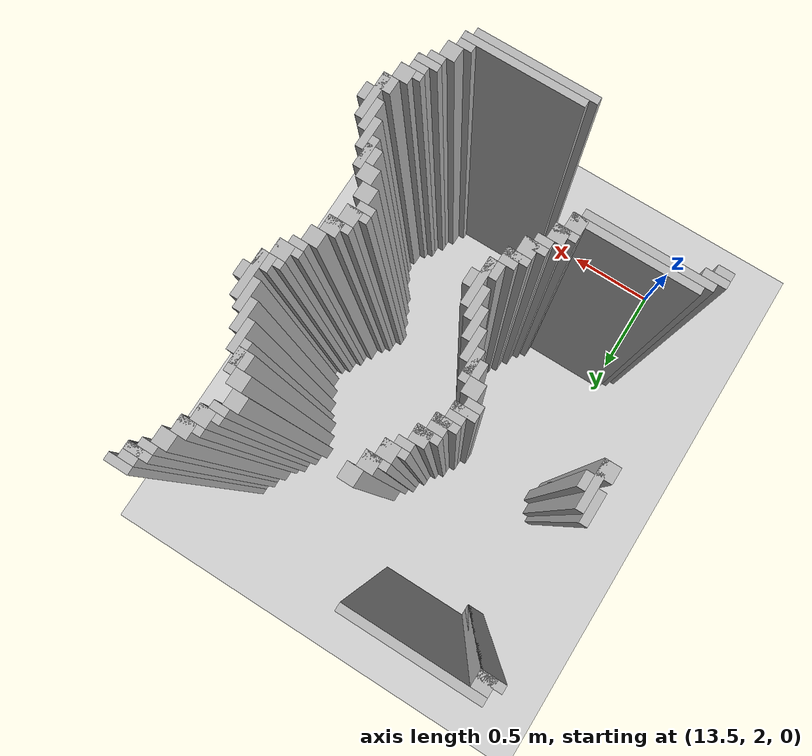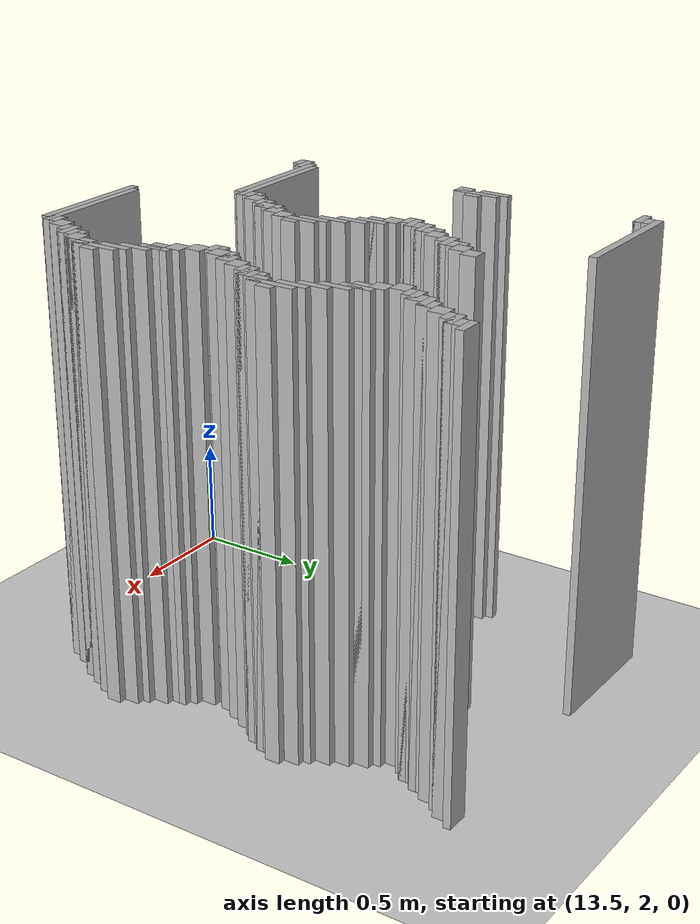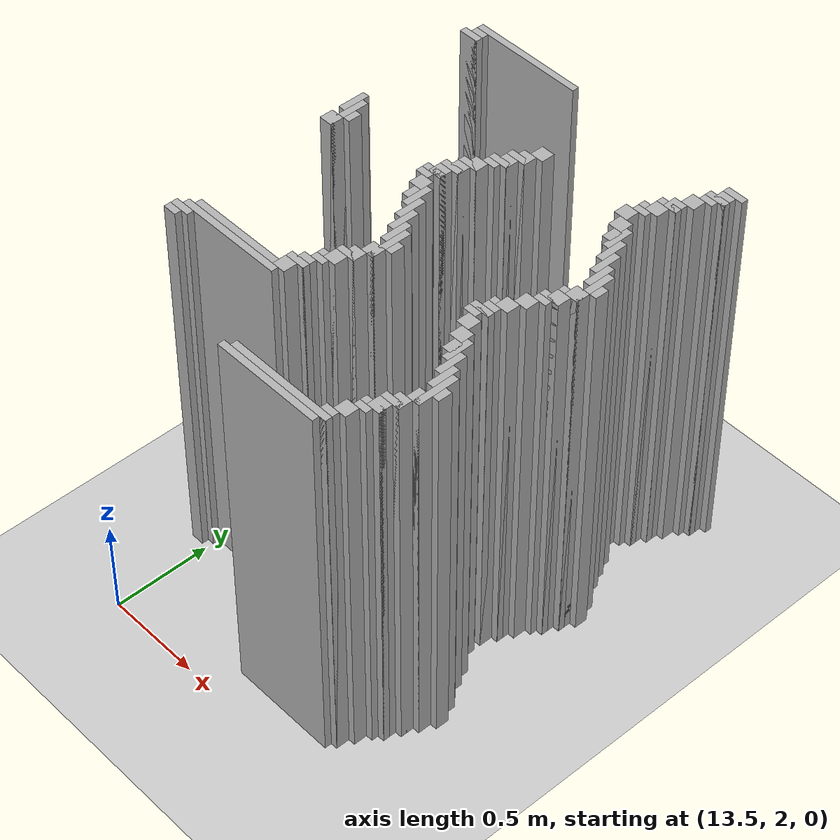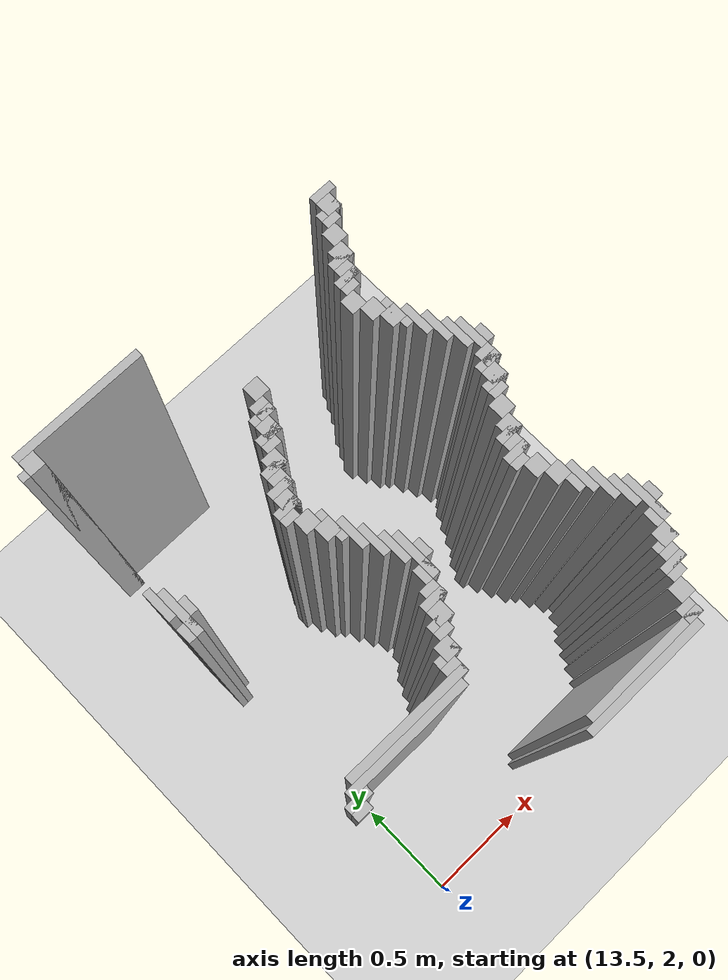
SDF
<sdf version="1.6">
 <world name="slam_world">
  <model name="ground_plane">
   <static>true</static>
   <link name="link">
    <collision name="collision">
     <geometry><plane><normal>0 0 1</normal><size>100 100</size></plane></geometry>
    </collision>
    <visual name="visual">
     <geometry><plane><normal>0 0 1</normal><size>100 100</size></plane></geometry>
     <material>
      <ambient>0.8 0.8 0.8 1</ambient>
      <diffuse>0.8 0.8 0.8 1</diffuse>
      <specular>0.8 0.8 0.8 1</specular>
     </material>
    </visual>
   </link>
  </model>
  <model name="wall_4310">
   <static>true</static>
   <pose>13.694895591647331 4.263341067285383 1.0 0 0 0</pose>
   <link name="link">
    <collision name="collision">
     <geometry><box><size>0.5916473317865429 0.03480278422273782 2.0</size></box></geometry>
    </collision>
    <visual name="visual">
     <geometry><box><size>0.5916473317865429 0.03480278422273782 2.0</size></box></geometry>
     <material><ambient>0.5 0.5 0.5 1</ambient><diffuse>0.7 0.7 0.7 1</diffuse></material>
    </visual>
   </link>
  </model>
  <model name="wall_4311">
   <static>true</static>
   <pose>14.912993039443155 4.263341067285383 1.0 0 0 0</pose>
   <link name="link">
    <collision name="collision">
     <geometry><box><size>0.10440835266821345 0.03480278422273782 2.0</size></box></geometry>
    </collision>
    <visual name="visual">
     <geometry><box><size>0.10440835266821345 0.03480278422273782 2.0</size></box></geometry>
     <material><ambient>0.5 0.5 0.5 1</ambient><diffuse>0.7 0.7 0.7 1</diffuse></material>
    </visual>
   </link>
  </model>
  <model name="wall_4325">
   <static>true</static>
   <pose>13.433874709976797 4.211136890951276 1.0 0 0 0</pose>
   <link name="link">
    <collision name="collision">
     <geometry><box><size>0.06960556844547564 0.06960556844547564 2.0</size></box></geometry>
    </collision>
    <visual name="visual">
     <geometry><box><size>0.06960556844547564 0.06960556844547564 2.0</size></box></geometry>
     <material><ambient>0.5 0.5 0.5 1</ambient><diffuse>0.7 0.7 0.7 1</diffuse></material>
    </visual>
   </link>
  </model>
  <model name="wall_4326">
   <static>true</static>
   <pose>14.895591647331786 4.211136890951276 1.0 0 0 0</pose>
   <link name="link">
    <collision name="collision">
     <geometry><box><size>0.06960556844547564 0.06960556844547564 2.0</size></box></geometry>
    </collision>
    <visual name="visual">
     <geometry><box><size>0.06960556844547564 0.06960556844547564 2.0</size></box></geometry>
     <material><ambient>0.5 0.5 0.5 1</ambient><diffuse>0.7 0.7 0.7 1</diffuse></material>
    </visual>
   </link>
  </model>
  <model name="wall_4340">
   <static>true</static>
   <pose>13.416473317865428 4.193735498839907 1.0 0 0 0</pose>
   <link name="link">
    <collision name="collision">
     <geometry><box><size>0.10440835266821345 0.03480278422273782 2.0</size></box></geometry>
    </collision>
    <visual name="visual">
     <geometry><box><size>0.10440835266821345 0.03480278422273782 2.0</size></box></geometry>
     <material><ambient>0.5 0.5 0.5 1</ambient><diffuse>0.7 0.7 0.7 1</diffuse></material>
    </visual>
   </link>
  </model>
  <model name="wall_4341">
   <static>true</static>
   <pose>14.878190255220417 4.193735498839907 1.0 0 0 0</pose>
   <link name="link">
    <collision name="collision">
     <geometry><box><size>0.10440835266821345 0.03480278422273782 2.0</size></box></geometry>
    </collision>
    <visual name="visual">
     <geometry><box><size>0.10440835266821345 0.03480278422273782 2.0</size></box></geometry>
     <material><ambient>0.5 0.5 0.5 1</ambient><diffuse>0.7 0.7 0.7 1</diffuse></material>
    </visual>
   </link>
  </model>
  <model name="wall_4350">
   <static>true</static>
   <pose>14.860788863109049 4.158932714617169 1.0 0 0 0</pose>
   <link name="link">
    <collision name="collision">
     <geometry><box><size>0.06960556844547564 0.03480278422273782 2.0</size></box></geometry>
    </collision>
    <visual name="visual">
     <geometry><box><size>0.06960556844547564 0.03480278422273782 2.0</size></box></geometry>
     <material><ambient>0.5 0.5 0.5 1</ambient><diffuse>0.7 0.7 0.7 1</diffuse></material>
    </visual>
   </link>
  </model>
  <model name="wall_4365">
   <static>true</static>
   <pose>14.825986078886311 4.106728538283062 1.0 0 0 0</pose>
   <link name="link">
    <collision name="collision">
     <geometry><box><size>0.06960556844547564 0.06960556844547564 2.0</size></box></geometry>
    </collision>
    <visual name="visual">
     <geometry><box><size>0.06960556844547564 0.06960556844547564 2.0</size></box></geometry>
     <material><ambient>0.5 0.5 0.5 1</ambient><diffuse>0.7 0.7 0.7 1</diffuse></material>
    </visual>
   </link>
  </model>
  <model name="wall_4380">
   <static>true</static>
   <pose>14.791183294663572 4.037122969837587 1.0 0 0 0</pose>
   <link name="link">
    <collision name="collision">
     <geometry><box><size>0.06960556844547564 0.06960556844547564 2.0</size></box></geometry>
    </collision>
    <visual name="visual">
     <geometry><box><size>0.06960556844547564 0.06960556844547564 2.0</size></box></geometry>
     <material><ambient>0.5 0.5 0.5 1</ambient><diffuse>0.7 0.7 0.7 1</diffuse></material>
    </visual>
   </link>
  </model>
  <model name="wall_4395">
   <static>true</static>
   <pose>14.773781902552203 4.019721577726218 1.0 0 0 0</pose>
   <link name="link">
    <collision name="collision">
     <geometry><box><size>0.10440835266821345 0.03480278422273782 2.0</size></box></geometry>
    </collision>
    <visual name="visual">
     <geometry><box><size>0.10440835266821345 0.03480278422273782 2.0</size></box></geometry>
     <material><ambient>0.5 0.5 0.5 1</ambient><diffuse>0.7 0.7 0.7 1</diffuse></material>
    </visual>
   </link>
  </model>
  <model name="wall_4403">
   <static>true</static>
   <pose>14.756380510440835 3.967517401392111 1.0 0 0 0</pose>
   <link name="link">
    <collision name="collision">
     <geometry><box><size>0.06960556844547564 0.06960556844547564 2.0</size></box></geometry>
    </collision>
    <visual name="visual">
     <geometry><box><size>0.06960556844547564 0.06960556844547564 2.0</size></box></geometry>
     <material><ambient>0.5 0.5 0.5 1</ambient><diffuse>0.7 0.7 0.7 1</diffuse></material>
    </visual>
   </link>
  </model>
  <model name="wall_4418">
   <static>true</static>
   <pose>14.738979118329466 3.9501160092807424 1.0 0 0 0</pose>
   <link name="link">
    <collision name="collision">
     <geometry><box><size>0.10440835266821345 0.03480278422273782 2.0</size></box></geometry>
    </collision>
    <visual name="visual">
     <geometry><box><size>0.10440835266821345 0.03480278422273782 2.0</size></box></geometry>
     <material><ambient>0.5 0.5 0.5 1</ambient><diffuse>0.7 0.7 0.7 1</diffuse></material>
    </visual>
   </link>
  </model>
  <model name="wall_4426">
   <static>true</static>
   <pose>14.721577726218097 3.9153132250580045 1.0 0 0 0</pose>
   <link name="link">
    <collision name="collision">
     <geometry><box><size>0.06960556844547564 0.03480278422273782 2.0</size></box></geometry>
    </collision>
    <visual name="visual">
     <geometry><box><size>0.06960556844547564 0.03480278422273782 2.0</size></box></geometry>
     <material><ambient>0.5 0.5 0.5 1</ambient><diffuse>0.7 0.7 0.7 1</diffuse></material>
    </visual>
   </link>
  </model>
  <model name="wall_4441">
   <static>true</static>
   <pose>14.199535962877029 3.863109048723898 1.0 0 0 0</pose>
   <link name="link">
    <collision name="collision">
     <geometry><box><size>0.06960556844547564 0.06960556844547564 2.0</size></box></geometry>
    </collision>
    <visual name="visual">
     <geometry><box><size>0.06960556844547564 0.06960556844547564 2.0</size></box></geometry>
     <material><ambient>0.5 0.5 0.5 1</ambient><diffuse>0.7 0.7 0.7 1</diffuse></material>
    </visual>
   </link>
  </model>
  <model name="wall_4442">
   <static>true</static>
   <pose>14.68677494199536 3.863109048723898 1.0 0 0 0</pose>
   <link name="link">
    <collision name="collision">
     <geometry><box><size>0.06960556844547564 0.06960556844547564 2.0</size></box></geometry>
    </collision>
    <visual name="visual">
     <geometry><box><size>0.06960556844547564 0.06960556844547564 2.0</size></box></geometry>
     <material><ambient>0.5 0.5 0.5 1</ambient><diffuse>0.7 0.7 0.7 1</diffuse></material>
    </visual>
   </link>
  </model>
  <model name="wall_4458">
   <static>true</static>
   <pose>14.164733178654291 3.793503480278422 1.0 0 0 0</pose>
   <link name="link">
    <collision name="collision">
     <geometry><box><size>0.06960556844547564 0.06960556844547564 2.0</size></box></geometry>
    </collision>
    <visual name="visual">
     <geometry><box><size>0.06960556844547564 0.06960556844547564 2.0</size></box></geometry>
     <material><ambient>0.5 0.5 0.5 1</ambient><diffuse>0.7 0.7 0.7 1</diffuse></material>
    </visual>
   </link>
  </model>
  <model name="wall_4459">
   <static>true</static>
   <pose>14.721577726218097 3.793503480278422 1.0 0 0 0</pose>
   <link name="link">
    <collision name="collision">
     <geometry><box><size>0.06960556844547564 0.06960556844547564 2.0</size></box></geometry>
    </collision>
    <visual name="visual">
     <geometry><box><size>0.06960556844547564 0.06960556844547564 2.0</size></box></geometry>
     <material><ambient>0.5 0.5 0.5 1</ambient><diffuse>0.7 0.7 0.7 1</diffuse></material>
    </visual>
   </link>
  </model>
  <model name="wall_4475">
   <static>true</static>
   <pose>14.147331786542923 3.776102088167053 1.0 0 0 0</pose>
   <link name="link">
    <collision name="collision">
     <geometry><box><size>0.10440835266821345 0.03480278422273782 2.0</size></box></geometry>
    </collision>
    <visual name="visual">
     <geometry><box><size>0.10440835266821345 0.03480278422273782 2.0</size></box></geometry>
     <material><ambient>0.5 0.5 0.5 1</ambient><diffuse>0.7 0.7 0.7 1</diffuse></material>
    </visual>
   </link>
  </model>
  <model name="wall_4476">
   <static>true</static>
   <pose>14.773781902552203 3.7238979118329465 1.0 0 0 0</pose>
   <link name="link">
    <collision name="collision">
     <geometry><box><size>0.03480278422273782 0.13921113689095127 2.0</size></box></geometry>
    </collision>
    <visual name="visual">
     <geometry><box><size>0.03480278422273782 0.13921113689095127 2.0</size></box></geometry>
     <material><ambient>0.5 0.5 0.5 1</ambient><diffuse>0.7 0.7 0.7 1</diffuse></material>
    </visual>
   </link>
  </model>
  <model name="wall_4492">
   <static>true</static>
   <pose>14.129930394431554 3.7238979118329465 1.0 0 0 0</pose>
   <link name="link">
    <collision name="collision">
     <geometry><box><size>0.06960556844547564 0.06960556844547564 2.0</size></box></geometry>
    </collision>
    <visual name="visual">
     <geometry><box><size>0.06960556844547564 0.06960556844547564 2.0</size></box></geometry>
     <material><ambient>0.5 0.5 0.5 1</ambient><diffuse>0.7 0.7 0.7 1</diffuse></material>
    </visual>
   </link>
  </model>
  <model name="wall_4493">
   <static>true</static>
   <pose>14.756380510440835 3.7238979118329465 1.0 0 0 0</pose>
   <link name="link">
    <collision name="collision">
     <geometry><box><size>0.06960556844547564 0.06960556844547564 2.0</size></box></geometry>
    </collision>
    <visual name="visual">
     <geometry><box><size>0.06960556844547564 0.06960556844547564 2.0</size></box></geometry>
     <material><ambient>0.5 0.5 0.5 1</ambient><diffuse>0.7 0.7 0.7 1</diffuse></material>
    </visual>
   </link>
  </model>
  <model name="wall_4509">
   <static>true</static>
   <pose>14.112529002320185 3.706496519721578 1.0 0 0 0</pose>
   <link name="link">
    <collision name="collision">
     <geometry><box><size>0.10440835266821345 0.03480278422273782 2.0</size></box></geometry>
    </collision>
    <visual name="visual">
     <geometry><box><size>0.10440835266821345 0.03480278422273782 2.0</size></box></geometry>
     <material><ambient>0.5 0.5 0.5 1</ambient><diffuse>0.7 0.7 0.7 1</diffuse></material>
    </visual>
   </link>
  </model>
  <model name="wall_4510">
   <static>true</static>
   <pose>14.80858468677494 3.6542923433874708 1.0 0 0 0</pose>
   <link name="link">
    <collision name="collision">
     <geometry><box><size>0.03480278422273782 0.13921113689095127 2.0</size></box></geometry>
    </collision>
    <visual name="visual">
     <geometry><box><size>0.03480278422273782 0.13921113689095127 2.0</size></box></geometry>
     <material><ambient>0.5 0.5 0.5 1</ambient><diffuse>0.7 0.7 0.7 1</diffuse></material>
    </visual>
   </link>
  </model>
  <model name="wall_4517">
   <static>true</static>
   <pose>14.095127610208817 3.67169373549884 1.0 0 0 0</pose>
   <link name="link">
    <collision name="collision">
     <geometry><box><size>0.06960556844547564 0.03480278422273782 2.0</size></box></geometry>
    </collision>
    <visual name="visual">
     <geometry><box><size>0.06960556844547564 0.03480278422273782 2.0</size></box></geometry>
     <material><ambient>0.5 0.5 0.5 1</ambient><diffuse>0.7 0.7 0.7 1</diffuse></material>
    </visual>
   </link>
  </model>
  <model name="wall_4533">
   <static>true</static>
   <pose>14.06032482598608 3.619489559164733 1.0 0 0 0</pose>
   <link name="link">
    <collision name="collision">
     <geometry><box><size>0.06960556844547564 0.06960556844547564 2.0</size></box></geometry>
    </collision>
    <visual name="visual">
     <geometry><box><size>0.06960556844547564 0.06960556844547564 2.0</size></box></geometry>
     <material><ambient>0.5 0.5 0.5 1</ambient><diffuse>0.7 0.7 0.7 1</diffuse></material>
    </visual>
   </link>
  </model>
  <model name="wall_4534">
   <static>true</static>
   <pose>14.84338747099768 3.584686774941995 1.0 0 0 0</pose>
   <link name="link">
    <collision name="collision">
     <geometry><box><size>0.03480278422273782 0.13921113689095127 2.0</size></box></geometry>
    </collision>
    <visual name="visual">
     <geometry><box><size>0.03480278422273782 0.13921113689095127 2.0</size></box></geometry>
     <material><ambient>0.5 0.5 0.5 1</ambient><diffuse>0.7 0.7 0.7 1</diffuse></material>
    </visual>
   </link>
  </model>
  <model name="wall_4541">
   <static>true</static>
   <pose>14.042923433874709 3.602088167053364 1.0 0 0 0</pose>
   <link name="link">
    <collision name="collision">
     <geometry><box><size>0.10440835266821345 0.03480278422273782 2.0</size></box></geometry>
    </collision>
    <visual name="visual">
     <geometry><box><size>0.10440835266821345 0.03480278422273782 2.0</size></box></geometry>
     <material><ambient>0.5 0.5 0.5 1</ambient><diffuse>0.7 0.7 0.7 1</diffuse></material>
    </visual>
   </link>
  </model>
  <model name="wall_4556">
   <static>true</static>
   <pose>13.416473317865428 3.51508120649652 1.0 0 0 0</pose>
   <link name="link">
    <collision name="collision">
     <geometry><box><size>0.03480278422273782 0.13921113689095127 2.0</size></box></geometry>
    </collision>
    <visual name="visual">
     <geometry><box><size>0.03480278422273782 0.13921113689095127 2.0</size></box></geometry>
     <material><ambient>0.5 0.5 0.5 1</ambient><diffuse>0.7 0.7 0.7 1</diffuse></material>
    </visual>
   </link>
  </model>
  <model name="wall_4557">
   <static>true</static>
   <pose>14.02552204176334 3.549883990719257 1.0 0 0 0</pose>
   <link name="link">
    <collision name="collision">
     <geometry><box><size>0.06960556844547564 0.06960556844547564 2.0</size></box></geometry>
    </collision>
    <visual name="visual">
     <geometry><box><size>0.06960556844547564 0.06960556844547564 2.0</size></box></geometry>
     <material><ambient>0.5 0.5 0.5 1</ambient><diffuse>0.7 0.7 0.7 1</diffuse></material>
    </visual>
   </link>
  </model>
  <model name="wall_4558">
   <static>true</static>
   <pose>14.878190255220417 3.51508120649652 1.0 0 0 0</pose>
   <link name="link">
    <collision name="collision">
     <geometry><box><size>0.03480278422273782 0.13921113689095127 2.0</size></box></geometry>
    </collision>
    <visual name="visual">
     <geometry><box><size>0.03480278422273782 0.13921113689095127 2.0</size></box></geometry>
     <material><ambient>0.5 0.5 0.5 1</ambient><diffuse>0.7 0.7 0.7 1</diffuse></material>
    </visual>
   </link>
  </model>
  <model name="wall_4573">
   <static>true</static>
   <pose>13.451276102088167 3.445475638051044 1.0 0 0 0</pose>
   <link name="link">
    <collision name="collision">
     <geometry><box><size>0.03480278422273782 0.2088167053364269 2.0</size></box></geometry>
    </collision>
    <visual name="visual">
     <geometry><box><size>0.03480278422273782 0.2088167053364269 2.0</size></box></geometry>
     <material><ambient>0.5 0.5 0.5 1</ambient><diffuse>0.7 0.7 0.7 1</diffuse></material>
    </visual>
   </link>
  </model>
  <model name="wall_4574">
   <static>true</static>
   <pose>14.008120649651971 3.5324825986078885 1.0 0 0 0</pose>
   <link name="link">
    <collision name="collision">
     <geometry><box><size>0.10440835266821345 0.03480278422273782 2.0</size></box></geometry>
    </collision>
    <visual name="visual">
     <geometry><box><size>0.10440835266821345 0.03480278422273782 2.0</size></box></geometry>
     <material><ambient>0.5 0.5 0.5 1</ambient><diffuse>0.7 0.7 0.7 1</diffuse></material>
    </visual>
   </link>
  </model>
  <model name="wall_4575">
   <static>true</static>
   <pose>14.912993039443155 3.445475638051044 1.0 0 0 0</pose>
   <link name="link">
    <collision name="collision">
     <geometry><box><size>0.03480278422273782 0.2088167053364269 2.0</size></box></geometry>
    </collision>
    <visual name="visual">
     <geometry><box><size>0.03480278422273782 0.2088167053364269 2.0</size></box></geometry>
     <material><ambient>0.5 0.5 0.5 1</ambient><diffuse>0.7 0.7 0.7 1</diffuse></material>
    </visual>
   </link>
  </model>
  <model name="wall_4582">
   <static>true</static>
   <pose>13.990719257540603 3.480278422273782 1.0 0 0 0</pose>
   <link name="link">
    <collision name="collision">
     <geometry><box><size>0.06960556844547564 0.06960556844547564 2.0</size></box></geometry>
    </collision>
    <visual name="visual">
     <geometry><box><size>0.06960556844547564 0.06960556844547564 2.0</size></box></geometry>
     <material><ambient>0.5 0.5 0.5 1</ambient><diffuse>0.7 0.7 0.7 1</diffuse></material>
    </visual>
   </link>
  </model>
  <model name="wall_4596">
   <static>true</static>
   <pose>13.486078886310905 3.445475638051044 1.0 0 0 0</pose>
   <link name="link">
    <collision name="collision">
     <geometry><box><size>0.03480278422273782 0.06960556844547564 2.0</size></box></geometry>
    </collision>
    <visual name="visual">
     <geometry><box><size>0.03480278422273782 0.06960556844547564 2.0</size></box></geometry>
     <material><ambient>0.5 0.5 0.5 1</ambient><diffuse>0.7 0.7 0.7 1</diffuse></material>
    </visual>
   </link>
  </model>
  <model name="wall_4597">
   <static>true</static>
   <pose>13.973317865429234 3.4628770301624128 1.0 0 0 0</pose>
   <link name="link">
    <collision name="collision">
     <geometry><box><size>0.10440835266821345 0.03480278422273782 2.0</size></box></geometry>
    </collision>
    <visual name="visual">
     <geometry><box><size>0.10440835266821345 0.03480278422273782 2.0</size></box></geometry>
     <material><ambient>0.5 0.5 0.5 1</ambient><diffuse>0.7 0.7 0.7 1</diffuse></material>
    </visual>
   </link>
  </model>
  <model name="wall_4598">
   <static>true</static>
   <pose>14.947795823665892 3.445475638051044 1.0 0 0 0</pose>
   <link name="link">
    <collision name="collision">
     <geometry><box><size>0.03480278422273782 0.06960556844547564 2.0</size></box></geometry>
    </collision>
    <visual name="visual">
     <geometry><box><size>0.03480278422273782 0.06960556844547564 2.0</size></box></geometry>
     <material><ambient>0.5 0.5 0.5 1</ambient><diffuse>0.7 0.7 0.7 1</diffuse></material>
    </visual>
   </link>
  </model>
  <model name="wall_4605">
   <static>true</static>
   <pose>13.955916473317865 3.428074245939675 1.0 0 0 0</pose>
   <link name="link">
    <collision name="collision">
     <geometry><box><size>0.06960556844547564 0.03480278422273782 2.0</size></box></geometry>
    </collision>
    <visual name="visual">
     <geometry><box><size>0.06960556844547564 0.03480278422273782 2.0</size></box></geometry>
     <material><ambient>0.5 0.5 0.5 1</ambient><diffuse>0.7 0.7 0.7 1</diffuse></material>
    </visual>
   </link>
  </model>
  <model name="wall_4616">
   <static>true</static>
   <pose>13.433874709976797 3.3758700696055683 1.0 0 0 0</pose>
   <link name="link">
    <collision name="collision">
     <geometry><box><size>0.06960556844547564 0.06960556844547564 2.0</size></box></geometry>
    </collision>
    <visual name="visual">
     <geometry><box><size>0.06960556844547564 0.06960556844547564 2.0</size></box></geometry>
     <material><ambient>0.5 0.5 0.5 1</ambient><diffuse>0.7 0.7 0.7 1</diffuse></material>
    </visual>
   </link>
  </model>
  <model name="wall_4617">
   <static>true</static>
   <pose>13.990719257540603 3.3758700696055683 1.0 0 0 0</pose>
   <link name="link">
    <collision name="collision">
     <geometry><box><size>0.06960556844547564 0.06960556844547564 2.0</size></box></geometry>
    </collision>
    <visual name="visual">
     <geometry><box><size>0.06960556844547564 0.06960556844547564 2.0</size></box></geometry>
     <material><ambient>0.5 0.5 0.5 1</ambient><diffuse>0.7 0.7 0.7 1</diffuse></material>
    </visual>
   </link>
  </model>
  <model name="wall_4618">
   <static>true</static>
   <pose>14.895591647331786 3.3758700696055683 1.0 0 0 0</pose>
   <link name="link">
    <collision name="collision">
     <geometry><box><size>0.06960556844547564 0.06960556844547564 2.0</size></box></geometry>
    </collision>
    <visual name="visual">
     <geometry><box><size>0.06960556844547564 0.06960556844547564 2.0</size></box></geometry>
     <material><ambient>0.5 0.5 0.5 1</ambient><diffuse>0.7 0.7 0.7 1</diffuse></material>
    </visual>
   </link>
  </model>
  <model name="wall_4630">
   <static>true</static>
   <pose>14.042923433874709 3.3062645011600926 1.0 0 0 0</pose>
   <link name="link">
    <collision name="collision">
     <geometry><box><size>0.03480278422273782 0.13921113689095127 2.0</size></box></geometry>
    </collision>
    <visual name="visual">
     <geometry><box><size>0.03480278422273782 0.13921113689095127 2.0</size></box></geometry>
     <material><ambient>0.5 0.5 0.5 1</ambient><diffuse>0.7 0.7 0.7 1</diffuse></material>
    </visual>
   </link>
  </model>
  <model name="wall_4631">
   <static>true</static>
   <pose>14.878190255220417 3.358468677494199 1.0 0 0 0</pose>
   <link name="link">
    <collision name="collision">
     <geometry><box><size>0.10440835266821345 0.03480278422273782 2.0</size></box></geometry>
    </collision>
    <visual name="visual">
     <geometry><box><size>0.10440835266821345 0.03480278422273782 2.0</size></box></geometry>
     <material><ambient>0.5 0.5 0.5 1</ambient><diffuse>0.7 0.7 0.7 1</diffuse></material>
    </visual>
   </link>
  </model>
  <model name="wall_4643">
   <static>true</static>
   <pose>14.02552204176334 3.3062645011600926 1.0 0 0 0</pose>
   <link name="link">
    <collision name="collision">
     <geometry><box><size>0.06960556844547564 0.06960556844547564 2.0</size></box></geometry>
    </collision>
    <visual name="visual">
     <geometry><box><size>0.06960556844547564 0.06960556844547564 2.0</size></box></geometry>
     <material><ambient>0.5 0.5 0.5 1</ambient><diffuse>0.7 0.7 0.7 1</diffuse></material>
    </visual>
   </link>
  </model>
  <model name="wall_4644">
   <static>true</static>
   <pose>14.860788863109049 3.3062645011600926 1.0 0 0 0</pose>
   <link name="link">
    <collision name="collision">
     <geometry><box><size>0.06960556844547564 0.06960556844547564 2.0</size></box></geometry>
    </collision>
    <visual name="visual">
     <geometry><box><size>0.06960556844547564 0.06960556844547564 2.0</size></box></geometry>
     <material><ambient>0.5 0.5 0.5 1</ambient><diffuse>0.7 0.7 0.7 1</diffuse></material>
    </visual>
   </link>
  </model>
  <model name="wall_4656">
   <static>true</static>
   <pose>14.077726218097448 3.236658932714617 1.0 0 0 0</pose>
   <link name="link">
    <collision name="collision">
     <geometry><box><size>0.03480278422273782 0.13921113689095127 2.0</size></box></geometry>
    </collision>
    <visual name="visual">
     <geometry><box><size>0.03480278422273782 0.13921113689095127 2.0</size></box></geometry>
     <material><ambient>0.5 0.5 0.5 1</ambient><diffuse>0.7 0.7 0.7 1</diffuse></material>
    </visual>
   </link>
  </model>
  <model name="wall_4657">
   <static>true</static>
   <pose>14.84338747099768 3.288863109048724 1.0 0 0 0</pose>
   <link name="link">
    <collision name="collision">
     <geometry><box><size>0.10440835266821345 0.03480278422273782 2.0</size></box></geometry>
    </collision>
    <visual name="visual">
     <geometry><box><size>0.10440835266821345 0.03480278422273782 2.0</size></box></geometry>
     <material><ambient>0.5 0.5 0.5 1</ambient><diffuse>0.7 0.7 0.7 1</diffuse></material>
    </visual>
   </link>
  </model>
  <model name="wall_4663">
   <static>true</static>
   <pose>14.825986078886311 3.254060324825986 1.0 0 0 0</pose>
   <link name="link">
    <collision name="collision">
     <geometry><box><size>0.06960556844547564 0.03480278422273782 2.0</size></box></geometry>
    </collision>
    <visual name="visual">
     <geometry><box><size>0.06960556844547564 0.03480278422273782 2.0</size></box></geometry>
     <material><ambient>0.5 0.5 0.5 1</ambient><diffuse>0.7 0.7 0.7 1</diffuse></material>
    </visual>
   </link>
  </model>
  <model name="wall_4675">
   <static>true</static>
   <pose>14.112529002320185 3.167053364269141 1.0 0 0 0</pose>
   <link name="link">
    <collision name="collision">
     <geometry><box><size>0.03480278422273782 0.13921113689095127 2.0</size></box></geometry>
    </collision>
    <visual name="visual">
     <geometry><box><size>0.03480278422273782 0.13921113689095127 2.0</size></box></geometry>
     <material><ambient>0.5 0.5 0.5 1</ambient><diffuse>0.7 0.7 0.7 1</diffuse></material>
    </visual>
   </link>
  </model>
  <model name="wall_4676">
   <static>true</static>
   <pose>14.791183294663572 3.201856148491879 1.0 0 0 0</pose>
   <link name="link">
    <collision name="collision">
     <geometry><box><size>0.06960556844547564 0.06960556844547564 2.0</size></box></geometry>
    </collision>
    <visual name="visual">
     <geometry><box><size>0.06960556844547564 0.06960556844547564 2.0</size></box></geometry>
     <material><ambient>0.5 0.5 0.5 1</ambient><diffuse>0.7 0.7 0.7 1</diffuse></material>
    </visual>
   </link>
  </model>
  <model name="wall_4688">
   <static>true</static>
   <pose>14.147331786542923 3.097447795823666 1.0 0 0 0</pose>
   <link name="link">
    <collision name="collision">
     <geometry><box><size>0.03480278422273782 0.13921113689095127 2.0</size></box></geometry>
    </collision>
    <visual name="visual">
     <geometry><box><size>0.03480278422273782 0.13921113689095127 2.0</size></box></geometry>
     <material><ambient>0.5 0.5 0.5 1</ambient><diffuse>0.7 0.7 0.7 1</diffuse></material>
    </visual>
   </link>
  </model>
  <model name="wall_4689">
   <static>true</static>
   <pose>14.756380510440835 3.1322505800464038 1.0 0 0 0</pose>
   <link name="link">
    <collision name="collision">
     <geometry><box><size>0.06960556844547564 0.06960556844547564 2.0</size></box></geometry>
    </collision>
    <visual name="visual">
     <geometry><box><size>0.06960556844547564 0.06960556844547564 2.0</size></box></geometry>
     <material><ambient>0.5 0.5 0.5 1</ambient><diffuse>0.7 0.7 0.7 1</diffuse></material>
    </visual>
   </link>
  </model>
  <model name="wall_4701">
   <static>true</static>
   <pose>14.18213457076566 3.02784222737819 1.0 0 0 0</pose>
   <link name="link">
    <collision name="collision">
     <geometry><box><size>0.03480278422273782 0.2088167053364269 2.0</size></box></geometry>
    </collision>
    <visual name="visual">
     <geometry><box><size>0.03480278422273782 0.2088167053364269 2.0</size></box></geometry>
     <material><ambient>0.5 0.5 0.5 1</ambient><diffuse>0.7 0.7 0.7 1</diffuse></material>
    </visual>
   </link>
  </model>
  <model name="wall_4702">
   <static>true</static>
   <pose>14.738979118329466 3.1148491879350346 1.0 0 0 0</pose>
   <link name="link">
    <collision name="collision">
     <geometry><box><size>0.10440835266821345 0.03480278422273782 2.0</size></box></geometry>
    </collision>
    <visual name="visual">
     <geometry><box><size>0.10440835266821345 0.03480278422273782 2.0</size></box></geometry>
     <material><ambient>0.5 0.5 0.5 1</ambient><diffuse>0.7 0.7 0.7 1</diffuse></material>
    </visual>
   </link>
  </model>
  <model name="wall_4708">
   <static>true</static>
   <pose>14.721577726218097 3.062645011600928 1.0 0 0 0</pose>
   <link name="link">
    <collision name="collision">
     <geometry><box><size>0.06960556844547564 0.06960556844547564 2.0</size></box></geometry>
    </collision>
    <visual name="visual">
     <geometry><box><size>0.06960556844547564 0.06960556844547564 2.0</size></box></geometry>
     <material><ambient>0.5 0.5 0.5 1</ambient><diffuse>0.7 0.7 0.7 1</diffuse></material>
    </visual>
   </link>
  </model>
  <model name="wall_4723">
   <static>true</static>
   <pose>14.2169373549884 3.02784222737819 1.0 0 0 0</pose>
   <link name="link">
    <collision name="collision">
     <geometry><box><size>0.03480278422273782 0.06960556844547564 2.0</size></box></geometry>
    </collision>
    <visual name="visual">
     <geometry><box><size>0.03480278422273782 0.06960556844547564 2.0</size></box></geometry>
     <material><ambient>0.5 0.5 0.5 1</ambient><diffuse>0.7 0.7 0.7 1</diffuse></material>
    </visual>
   </link>
  </model>
  <model name="wall_4724">
   <static>true</static>
   <pose>14.704176334106728 3.045243619489559 1.0 0 0 0</pose>
   <link name="link">
    <collision name="collision">
     <geometry><box><size>0.10440835266821345 0.03480278422273782 2.0</size></box></geometry>
    </collision>
    <visual name="visual">
     <geometry><box><size>0.10440835266821345 0.03480278422273782 2.0</size></box></geometry>
     <material><ambient>0.5 0.5 0.5 1</ambient><diffuse>0.7 0.7 0.7 1</diffuse></material>
    </visual>
   </link>
  </model>
  <model name="wall_4730">
   <static>true</static>
   <pose>14.68677494199536 3.010440835266821 1.0 0 0 0</pose>
   <link name="link">
    <collision name="collision">
     <geometry><box><size>0.06960556844547564 0.03480278422273782 2.0</size></box></geometry>
    </collision>
    <visual name="visual">
     <geometry><box><size>0.06960556844547564 0.03480278422273782 2.0</size></box></geometry>
     <material><ambient>0.5 0.5 0.5 1</ambient><diffuse>0.7 0.7 0.7 1</diffuse></material>
    </visual>
   </link>
  </model>
  <model name="wall_4745">
   <static>true</static>
   <pose>14.164733178654291 2.9582366589327145 1.0 0 0 0</pose>
   <link name="link">
    <collision name="collision">
     <geometry><box><size>0.06960556844547564 0.06960556844547564 2.0</size></box></geometry>
    </collision>
    <visual name="visual">
     <geometry><box><size>0.06960556844547564 0.06960556844547564 2.0</size></box></geometry>
     <material><ambient>0.5 0.5 0.5 1</ambient><diffuse>0.7 0.7 0.7 1</diffuse></material>
    </visual>
   </link>
  </model>
  <model name="wall_4746">
   <static>true</static>
   <pose>14.721577726218097 2.9582366589327145 1.0 0 0 0</pose>
   <link name="link">
    <collision name="collision">
     <geometry><box><size>0.06960556844547564 0.06960556844547564 2.0</size></box></geometry>
    </collision>
    <visual name="visual">
     <geometry><box><size>0.06960556844547564 0.06960556844547564 2.0</size></box></geometry>
     <material><ambient>0.5 0.5 0.5 1</ambient><diffuse>0.7 0.7 0.7 1</diffuse></material>
    </visual>
   </link>
  </model>
  <model name="wall_4764">
   <static>true</static>
   <pose>14.129930394431554 2.8886310904872388 1.0 0 0 0</pose>
   <link name="link">
    <collision name="collision">
     <geometry><box><size>0.06960556844547564 0.06960556844547564 2.0</size></box></geometry>
    </collision>
    <visual name="visual">
     <geometry><box><size>0.06960556844547564 0.06960556844547564 2.0</size></box></geometry>
     <material><ambient>0.5 0.5 0.5 1</ambient><diffuse>0.7 0.7 0.7 1</diffuse></material>
    </visual>
   </link>
  </model>
  <model name="wall_4765">
   <static>true</static>
   <pose>14.756380510440835 2.8886310904872388 1.0 0 0 0</pose>
   <link name="link">
    <collision name="collision">
     <geometry><box><size>0.06960556844547564 0.06960556844547564 2.0</size></box></geometry>
    </collision>
    <visual name="visual">
     <geometry><box><size>0.06960556844547564 0.06960556844547564 2.0</size></box></geometry>
     <material><ambient>0.5 0.5 0.5 1</ambient><diffuse>0.7 0.7 0.7 1</diffuse></material>
    </visual>
   </link>
  </model>
  <model name="wall_4780">
   <static>true</static>
   <pose>14.112529002320185 2.87122969837587 1.0 0 0 0</pose>
   <link name="link">
    <collision name="collision">
     <geometry><box><size>0.10440835266821345 0.03480278422273782 2.0</size></box></geometry>
    </collision>
    <visual name="visual">
     <geometry><box><size>0.10440835266821345 0.03480278422273782 2.0</size></box></geometry>
     <material><ambient>0.5 0.5 0.5 1</ambient><diffuse>0.7 0.7 0.7 1</diffuse></material>
    </visual>
   </link>
  </model>
  <model name="wall_4781">
   <static>true</static>
   <pose>14.80858468677494 2.819025522041763 1.0 0 0 0</pose>
   <link name="link">
    <collision name="collision">
     <geometry><box><size>0.03480278422273782 0.13921113689095127 2.0</size></box></geometry>
    </collision>
    <visual name="visual">
     <geometry><box><size>0.03480278422273782 0.13921113689095127 2.0</size></box></geometry>
     <material><ambient>0.5 0.5 0.5 1</ambient><diffuse>0.7 0.7 0.7 1</diffuse></material>
    </visual>
   </link>
  </model>
  <model name="wall_4796">
   <static>true</static>
   <pose>14.095127610208817 2.819025522041763 1.0 0 0 0</pose>
   <link name="link">
    <collision name="collision">
     <geometry><box><size>0.06960556844547564 0.06960556844547564 2.0</size></box></geometry>
    </collision>
    <visual name="visual">
     <geometry><box><size>0.06960556844547564 0.06960556844547564 2.0</size></box></geometry>
     <material><ambient>0.5 0.5 0.5 1</ambient><diffuse>0.7 0.7 0.7 1</diffuse></material>
    </visual>
   </link>
  </model>
  <model name="wall_4797">
   <static>true</static>
   <pose>14.791183294663572 2.819025522041763 1.0 0 0 0</pose>
   <link name="link">
    <collision name="collision">
     <geometry><box><size>0.06960556844547564 0.06960556844547564 2.0</size></box></geometry>
    </collision>
    <visual name="visual">
     <geometry><box><size>0.06960556844547564 0.06960556844547564 2.0</size></box></geometry>
     <material><ambient>0.5 0.5 0.5 1</ambient><diffuse>0.7 0.7 0.7 1</diffuse></material>
    </visual>
   </link>
  </model>
  <model name="wall_4812">
   <static>true</static>
   <pose>14.077726218097448 2.8016241299303943 1.0 0 0 0</pose>
   <link name="link">
    <collision name="collision">
     <geometry><box><size>0.10440835266821345 0.03480278422273782 2.0</size></box></geometry>
    </collision>
    <visual name="visual">
     <geometry><box><size>0.10440835266821345 0.03480278422273782 2.0</size></box></geometry>
     <material><ambient>0.5 0.5 0.5 1</ambient><diffuse>0.7 0.7 0.7 1</diffuse></material>
    </visual>
   </link>
  </model>
  <model name="wall_4813">
   <static>true</static>
   <pose>14.84338747099768 2.7494199535962878 1.0 0 0 0</pose>
   <link name="link">
    <collision name="collision">
     <geometry><box><size>0.03480278422273782 0.13921113689095127 2.0</size></box></geometry>
    </collision>
    <visual name="visual">
     <geometry><box><size>0.03480278422273782 0.13921113689095127 2.0</size></box></geometry>
     <material><ambient>0.5 0.5 0.5 1</ambient><diffuse>0.7 0.7 0.7 1</diffuse></material>
    </visual>
   </link>
  </model>
  <model name="wall_4821">
   <static>true</static>
   <pose>14.06032482598608 2.7668213457076565 1.0 0 0 0</pose>
   <link name="link">
    <collision name="collision">
     <geometry><box><size>0.06960556844547564 0.03480278422273782 2.0</size></box></geometry>
    </collision>
    <visual name="visual">
     <geometry><box><size>0.06960556844547564 0.03480278422273782 2.0</size></box></geometry>
     <material><ambient>0.5 0.5 0.5 1</ambient><diffuse>0.7 0.7 0.7 1</diffuse></material>
    </visual>
   </link>
  </model>
  <model name="wall_4836">
   <static>true</static>
   <pose>14.02552204176334 2.71461716937355 1.0 0 0 0</pose>
   <link name="link">
    <collision name="collision">
     <geometry><box><size>0.06960556844547564 0.06960556844547564 2.0</size></box></geometry>
    </collision>
    <visual name="visual">
     <geometry><box><size>0.06960556844547564 0.06960556844547564 2.0</size></box></geometry>
     <material><ambient>0.5 0.5 0.5 1</ambient><diffuse>0.7 0.7 0.7 1</diffuse></material>
    </visual>
   </link>
  </model>
  <model name="wall_4837">
   <static>true</static>
   <pose>14.878190255220417 2.679814385150812 1.0 0 0 0</pose>
   <link name="link">
    <collision name="collision">
     <geometry><box><size>0.03480278422273782 0.13921113689095127 2.0</size></box></geometry>
    </collision>
    <visual name="visual">
     <geometry><box><size>0.03480278422273782 0.13921113689095127 2.0</size></box></geometry>
     <material><ambient>0.5 0.5 0.5 1</ambient><diffuse>0.7 0.7 0.7 1</diffuse></material>
    </visual>
   </link>
  </model>
  <model name="wall_4852">
   <static>true</static>
   <pose>14.008120649651971 2.6972157772621808 1.0 0 0 0</pose>
   <link name="link">
    <collision name="collision">
     <geometry><box><size>0.10440835266821345 0.03480278422273782 2.0</size></box></geometry>
    </collision>
    <visual name="visual">
     <geometry><box><size>0.10440835266821345 0.03480278422273782 2.0</size></box></geometry>
     <material><ambient>0.5 0.5 0.5 1</ambient><diffuse>0.7 0.7 0.7 1</diffuse></material>
    </visual>
   </link>
  </model>
  <model name="wall_4853">
   <static>true</static>
   <pose>14.912993039443155 2.6102088167053363 1.0 0 0 0</pose>
   <link name="link">
    <collision name="collision">
     <geometry><box><size>0.03480278422273782 0.2088167053364269 2.0</size></box></geometry>
    </collision>
    <visual name="visual">
     <geometry><box><size>0.03480278422273782 0.2088167053364269 2.0</size></box></geometry>
     <material><ambient>0.5 0.5 0.5 1</ambient><diffuse>0.7 0.7 0.7 1</diffuse></material>
    </visual>
   </link>
  </model>
  <model name="wall_4861">
   <static>true</static>
   <pose>13.990719257540603 2.645011600928074 1.0 0 0 0</pose>
   <link name="link">
    <collision name="collision">
     <geometry><box><size>0.06960556844547564 0.06960556844547564 2.0</size></box></geometry>
    </collision>
    <visual name="visual">
     <geometry><box><size>0.06960556844547564 0.06960556844547564 2.0</size></box></geometry>
     <material><ambient>0.5 0.5 0.5 1</ambient><diffuse>0.7 0.7 0.7 1</diffuse></material>
    </visual>
   </link>
  </model>
  <model name="wall_4875">
   <static>true</static>
   <pose>13.747099767981437 2.627610208816705 1.0 0 0 0</pose>
   <link name="link">
    <collision name="collision">
     <geometry><box><size>0.5568445475638051 0.03480278422273782 2.0</size></box></geometry>
    </collision>
    <visual name="visual">
     <geometry><box><size>0.5568445475638051 0.03480278422273782 2.0</size></box></geometry>
     <material><ambient>0.5 0.5 0.5 1</ambient><diffuse>0.7 0.7 0.7 1</diffuse></material>
    </visual>
   </link>
  </model>
  <model name="wall_4876">
   <static>true</static>
   <pose>14.947795823665892 2.6102088167053363 1.0 0 0 0</pose>
   <link name="link">
    <collision name="collision">
     <geometry><box><size>0.03480278422273782 0.06960556844547564 2.0</size></box></geometry>
    </collision>
    <visual name="visual">
     <geometry><box><size>0.03480278422273782 0.06960556844547564 2.0</size></box></geometry>
     <material><ambient>0.5 0.5 0.5 1</ambient><diffuse>0.7 0.7 0.7 1</diffuse></material>
    </visual>
   </link>
  </model>
  <model name="wall_4886">
   <static>true</static>
   <pose>13.7122969837587 2.5928074245939676 1.0 0 0 0</pose>
   <link name="link">
    <collision name="collision">
     <geometry><box><size>0.5568445475638051 0.03480278422273782 2.0</size></box></geometry>
    </collision>
    <visual name="visual">
     <geometry><box><size>0.5568445475638051 0.03480278422273782 2.0</size></box></geometry>
     <material><ambient>0.5 0.5 0.5 1</ambient><diffuse>0.7 0.7 0.7 1</diffuse></material>
    </visual>
   </link>
  </model>
  <model name="wall_4898">
   <static>true</static>
   <pose>13.451276102088167 2.5580046403712298 1.0 0 0 0</pose>
   <link name="link">
    <collision name="collision">
     <geometry><box><size>0.10440835266821345 0.03480278422273782 2.0</size></box></geometry>
    </collision>
    <visual name="visual">
     <geometry><box><size>0.10440835266821345 0.03480278422273782 2.0</size></box></geometry>
     <material><ambient>0.5 0.5 0.5 1</ambient><diffuse>0.7 0.7 0.7 1</diffuse></material>
    </visual>
   </link>
  </model>
  <model name="wall_4899">
   <static>true</static>
   <pose>14.895591647331786 2.5406032482598606 1.0 0 0 0</pose>
   <link name="link">
    <collision name="collision">
     <geometry><box><size>0.06960556844547564 0.06960556844547564 2.0</size></box></geometry>
    </collision>
    <visual name="visual">
     <geometry><box><size>0.06960556844547564 0.06960556844547564 2.0</size></box></geometry>
     <material><ambient>0.5 0.5 0.5 1</ambient><diffuse>0.7 0.7 0.7 1</diffuse></material>
    </visual>
   </link>
  </model>
  <model name="wall_4906">
   <static>true</static>
   <pose>13.433874709976797 2.523201856148492 1.0 0 0 0</pose>
   <link name="link">
    <collision name="collision">
     <geometry><box><size>0.06960556844547564 0.03480278422273782 2.0</size></box></geometry>
    </collision>
    <visual name="visual">
     <geometry><box><size>0.06960556844547564 0.03480278422273782 2.0</size></box></geometry>
     <material><ambient>0.5 0.5 0.5 1</ambient><diffuse>0.7 0.7 0.7 1</diffuse></material>
    </visual>
   </link>
  </model>
  <model name="wall_4919">
   <static>true</static>
   <pose>14.860788863109049 2.470997679814385 1.0 0 0 0</pose>
   <link name="link">
    <collision name="collision">
     <geometry><box><size>0.06960556844547564 0.06960556844547564 2.0</size></box></geometry>
    </collision>
    <visual name="visual">
     <geometry><box><size>0.06960556844547564 0.06960556844547564 2.0</size></box></geometry>
     <material><ambient>0.5 0.5 0.5 1</ambient><diffuse>0.7 0.7 0.7 1</diffuse></material>
    </visual>
   </link>
  </model>
  <model name="wall_4932">
   <static>true</static>
   <pose>14.84338747099768 2.453596287703016 1.0 0 0 0</pose>
   <link name="link">
    <collision name="collision">
     <geometry><box><size>0.10440835266821345 0.03480278422273782 2.0</size></box></geometry>
    </collision>
    <visual name="visual">
     <geometry><box><size>0.10440835266821345 0.03480278422273782 2.0</size></box></geometry>
     <material><ambient>0.5 0.5 0.5 1</ambient><diffuse>0.7 0.7 0.7 1</diffuse></material>
    </visual>
   </link>
  </model>
  <model name="wall_4944">
   <static>true</static>
   <pose>14.825986078886311 2.4013921113689096 1.0 0 0 0</pose>
   <link name="link">
    <collision name="collision">
     <geometry><box><size>0.06960556844547564 0.06960556844547564 2.0</size></box></geometry>
    </collision>
    <visual name="visual">
     <geometry><box><size>0.06960556844547564 0.06960556844547564 2.0</size></box></geometry>
     <material><ambient>0.5 0.5 0.5 1</ambient><diffuse>0.7 0.7 0.7 1</diffuse></material>
    </visual>
   </link>
  </model>
  <model name="wall_4957">
   <static>true</static>
   <pose>14.80858468677494 2.3839907192575405 1.0 0 0 0</pose>
   <link name="link">
    <collision name="collision">
     <geometry><box><size>0.10440835266821345 0.03480278422273782 2.0</size></box></geometry>
    </collision>
    <visual name="visual">
     <geometry><box><size>0.10440835266821345 0.03480278422273782 2.0</size></box></geometry>
     <material><ambient>0.5 0.5 0.5 1</ambient><diffuse>0.7 0.7 0.7 1</diffuse></material>
    </visual>
   </link>
  </model>
  <model name="wall_4965">
   <static>true</static>
   <pose>14.791183294663572 2.3491879350348026 1.0 0 0 0</pose>
   <link name="link">
    <collision name="collision">
     <geometry><box><size>0.06960556844547564 0.03480278422273782 2.0</size></box></geometry>
    </collision>
    <visual name="visual">
     <geometry><box><size>0.06960556844547564 0.03480278422273782 2.0</size></box></geometry>
     <material><ambient>0.5 0.5 0.5 1</ambient><diffuse>0.7 0.7 0.7 1</diffuse></material>
    </visual>
   </link>
  </model>
  <model name="wall_4978">
   <static>true</static>
   <pose>14.756380510440835 2.296983758700696 1.0 0 0 0</pose>
   <link name="link">
    <collision name="collision">
     <geometry><box><size>0.06960556844547564 0.06960556844547564 2.0</size></box></geometry>
    </collision>
    <visual name="visual">
     <geometry><box><size>0.06960556844547564 0.06960556844547564 2.0</size></box></geometry>
     <material><ambient>0.5 0.5 0.5 1</ambient><diffuse>0.7 0.7 0.7 1</diffuse></material>
    </visual>
   </link>
  </model>
  <model name="wall_4991">
   <static>true</static>
   <pose>14.721577726218097 2.2273781902552203 1.0 0 0 0</pose>
   <link name="link">
    <collision name="collision">
     <geometry><box><size>0.06960556844547564 0.06960556844547564 2.0</size></box></geometry>
    </collision>
    <visual name="visual">
     <geometry><box><size>0.06960556844547564 0.06960556844547564 2.0</size></box></geometry>
     <material><ambient>0.5 0.5 0.5 1</ambient><diffuse>0.7 0.7 0.7 1</diffuse></material>
    </visual>
   </link>
  </model>
  <model name="wall_5003">
   <static>true</static>
   <pose>14.477958236658932 2.2099767981438516 1.0 0 0 0</pose>
   <link name="link">
    <collision name="collision">
     <geometry><box><size>0.5568445475638051 0.03480278422273782 2.0</size></box></geometry>
    </collision>
    <visual name="visual">
     <geometry><box><size>0.5568445475638051 0.03480278422273782 2.0</size></box></geometry>
     <material><ambient>0.5 0.5 0.5 1</ambient><diffuse>0.7 0.7 0.7 1</diffuse></material>
    </visual>
   </link>
  </model>
  <model name="wall_5014">
   <static>true</static>
   <pose>14.443155452436194 2.1751740139211138 1.0 0 0 0</pose>
   <link name="link">
    <collision name="collision">
     <geometry><box><size>0.5568445475638051 0.03480278422273782 2.0</size></box></geometry>
    </collision>
    <visual name="visual">
     <geometry><box><size>0.5568445475638051 0.03480278422273782 2.0</size></box></geometry>
     <material><ambient>0.5 0.5 0.5 1</ambient><diffuse>0.7 0.7 0.7 1</diffuse></material>
    </visual>
   </link>
  </model>
 </world>
</sdf>
